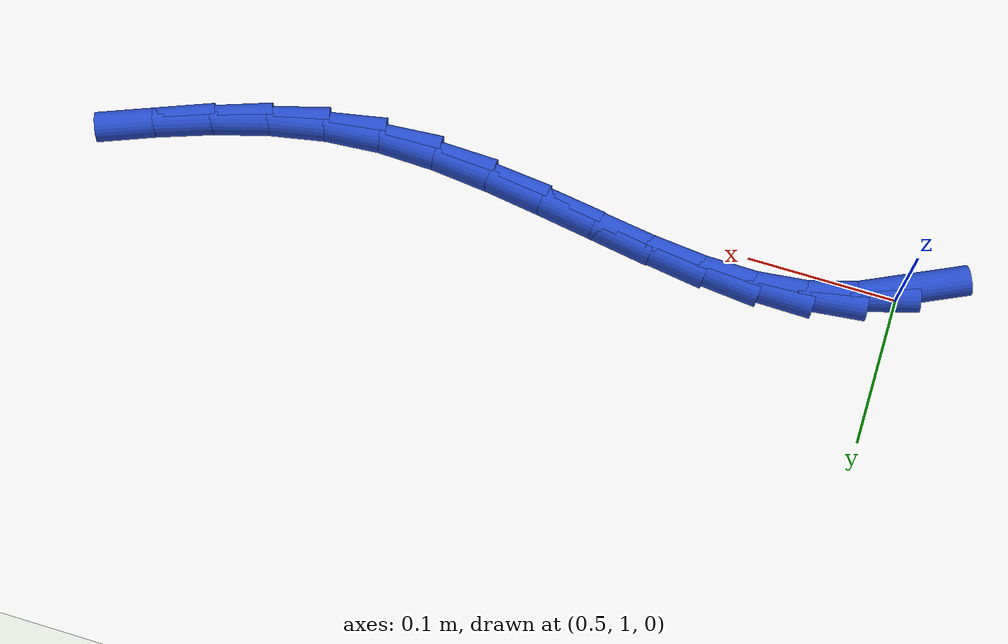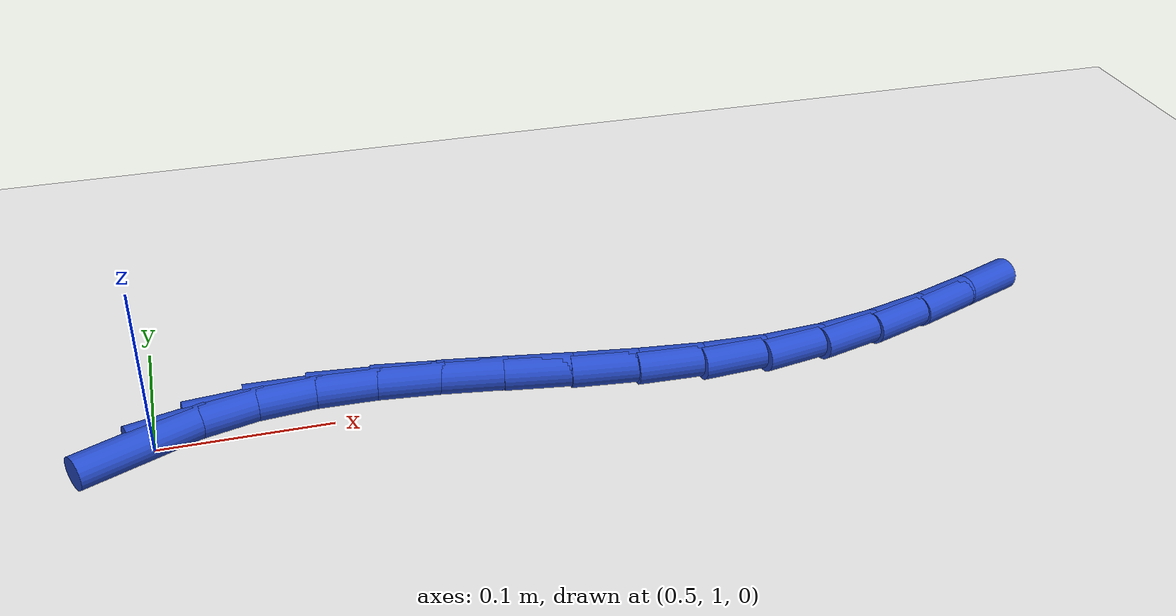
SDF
<sdf version="1.6">
 <world name="default">
  <model name="ground_plane">
   <static>1</static>
   <link name="link">
    <collision name="collision">
     <geometry><plane><normal>0 0 1</normal><size>100 100</size></plane></geometry>
     <surface><friction><ode><mu>100</mu><mu2>50</mu2></ode></friction></surface>
    </collision>
    <visual name="visual">
     <cast_shadows>0</cast_shadows>
     <geometry><plane><normal>0 0 1</normal><size>100 100</size></plane></geometry>
     <material>
      <script><uri>file://media/materials/scripts/gazebo.material</uri><name>Gazebo/WhiteGlow</name></script>
     </material>
    </visual>
   </link>
  </model>
  <model name="line">
   <link name="link_30">
    <pose>0.49432879406476116 0.9924204865949673 0.01 0 1.57 0.442410495497921</pose>
    <collision name="collision">
     <geometry><cylinder><radius>0.01</radius><length>0.08</length></cylinder></geometry>
    </collision>
    <visual name="visual">
     <material>
      <script><name>Gazebo/Blue</name><uri>file://media/materials/scripts/gazebo.material</uri></script>
     </material>
     <geometry><cylinder><radius>0.01</radius><length>0.08</length></cylinder></geometry>
    </visual>
   </link>
   <link name="link_31">
    <pose>0.5249382635212527 1.006921068396669 0.01 0 1.57 0.2758011422567</pose>
    <collision name="collision">
     <geometry><cylinder><radius>0.01</radius><length>0.08</length></cylinder></geometry>
    </collision>
    <visual name="visual">
     <material>
      <script><name>Gazebo/Blue</name><uri>file://media/materials/scripts/gazebo.material</uri></script>
     </material>
     <geometry><cylinder><radius>0.01</radius><length>0.08</length></cylinder></geometry>
    </visual>
   </link>
   <link name="link_32">
    <pose>0.5573112078425622 1.0160830561401628 0.01 0 1.57 0.11091420878421225</pose>
    <collision name="collision">
     <geometry><cylinder><radius>0.01</radius><length>0.08</length></cylinder></geometry>
    </collision>
    <visual name="visual">
     <material>
      <script><name>Gazebo/Blue</name><uri>file://media/materials/scripts/gazebo.material</uri></script>
     </material>
     <geometry><cylinder><radius>0.01</radius><length>0.08</length></cylinder></geometry>
    </visual>
   </link>
   <link name="link_33">
    <pose>0.5914532315949727 1.0198854969877424 0.01 0 1.57 -0.013574645325719763</pose>
    <collision name="collision">
     <geometry><cylinder><radius>0.01</radius><length>0.08</length></cylinder></geometry>
    </collision>
    <visual name="visual">
     <material>
      <script><name>Gazebo/Blue</name><uri>file://media/materials/scripts/gazebo.material</uri></script>
     </material>
     <geometry><cylinder><radius>0.01</radius><length>0.08</length></cylinder></geometry>
    </visual>
   </link>
   <link name="link_34">
    <pose>0.6270991123007051 1.0194015870759536 0.01 0 1.57 -0.09680402853373943</pose>
    <collision name="collision">
     <geometry><cylinder><radius>0.01</radius><length>0.08</length></cylinder></geometry>
    </collision>
    <visual name="visual">
     <material>
      <script><name>Gazebo/Blue</name><uri>file://media/materials/scripts/gazebo.material</uri></script>
     </material>
     <geometry><cylinder><radius>0.01</radius><length>0.08</length></cylinder></geometry>
    </visual>
   </link>
   <link name="link_35">
    <pose>0.6639543852991328 1.015822661793205 0.01 0 1.57 -0.1441500881530438</pose>
    <collision name="collision">
     <geometry><cylinder><radius>0.01</radius><length>0.08</length></cylinder></geometry>
    </collision>
    <visual name="visual">
     <material>
      <script><name>Gazebo/Blue</name><uri>file://media/materials/scripts/gazebo.material</uri></script>
     </material>
     <geometry><cylinder><radius>0.01</radius><length>0.08</length></cylinder></geometry>
    </visual>
   </link>
   <link name="link_36">
    <pose>0.7017245859296278 1.0103400565279046 0.01 0 1.57 -0.1599869326057495</pose>
    <collision name="collision">
     <geometry><cylinder><radius>0.01</radius><length>0.08</length></cylinder></geometry>
    </collision>
    <visual name="visual">
     <material>
      <script><name>Gazebo/Blue</name><uri>file://media/materials/scripts/gazebo.material</uri></script>
     </material>
     <geometry><cylinder><radius>0.01</radius><length>0.08</length></cylinder></geometry>
    </visual>
   </link>
   <link name="link_37">
    <pose>0.7401152495315626 1.0041451066684606 0.01 0 1.57 -0.1465768145054736</pose>
    <collision name="collision">
     <geometry><cylinder><radius>0.01</radius><length>0.08</length></cylinder></geometry>
    </collision>
    <visual name="visual">
     <material>
      <script><name>Gazebo/Blue</name><uri>file://media/materials/scripts/gazebo.material</uri></script>
     </material>
     <geometry><cylinder><radius>0.01</radius><length>0.08</length></cylinder></geometry>
    </visual>
   </link>
   <link name="link_38">
    <pose>0.7788319114443096 0.998429147603281 0.01 0 1.57 -0.10403136529894218</pose>
    <collision name="collision">
     <geometry><cylinder><radius>0.01</radius><length>0.08</length></cylinder></geometry>
    </collision>
    <visual name="visual">
     <material>
      <script><name>Gazebo/Blue</name><uri>file://media/materials/scripts/gazebo.material</uri></script>
     </material>
     <geometry><cylinder><radius>0.01</radius><length>0.08</length></cylinder></geometry>
    </visual>
   </link>
   <link name="link_39">
    <pose>0.817580107007242 0.9943835147207748 0.01 0 1.57 -0.030754576267320255</pose>
    <collision name="collision">
     <geometry><cylinder><radius>0.01</radius><length>0.08</length></cylinder></geometry>
    </collision>
    <visual name="visual">
     <material>
      <script><name>Gazebo/Blue</name><uri>file://media/materials/scripts/gazebo.material</uri></script>
     </material>
     <geometry><cylinder><radius>0.01</radius><length>0.08</length></cylinder></geometry>
    </visual>
   </link>
   <link name="link_40">
    <pose>0.8560653715597314 0.9931995434093488 0.01 0 1.57 0.0746664247674037</pose>
    <collision name="collision">
     <geometry><cylinder><radius>0.01</radius><length>0.08</length></cylinder></geometry>
    </collision>
    <visual name="visual">
     <material>
      <script><name>Gazebo/Blue</name><uri>file://media/materials/scripts/gazebo.material</uri></script>
     </material>
     <geometry><cylinder><radius>0.01</radius><length>0.08</length></cylinder></geometry>
    </visual>
   </link>
   <link name="link_41">
    <pose>0.8939987156026123 0.9960371658688199 0.01 0 1.57 0.1873155831965177</pose>
    <collision name="collision">
     <geometry><cylinder><radius>0.01</radius><length>0.08</length></cylinder></geometry>
    </collision>
    <visual name="visual">
     <material>
      <script><name>Gazebo/Blue</name><uri>file://media/materials/scripts/gazebo.material</uri></script>
     </material>
     <geometry><cylinder><radius>0.01</radius><length>0.08</length></cylinder></geometry>
    </visual>
   </link>
   <link name="link_42">
    <pose>0.9312580222862883 1.003099204025243 0.01 0 1.57 0.2759463623427365</pose>
    <collision name="collision">
     <geometry><cylinder><radius>0.01</radius><length>0.08</length></cylinder></geometry>
    </collision>
    <visual name="visual">
     <material>
      <script><name>Gazebo/Blue</name><uri>file://media/materials/scripts/gazebo.material</uri></script>
     </material>
     <geometry><cylinder><radius>0.01</radius><length>0.08</length></cylinder></geometry>
    </visual>
   </link>
   <link name="link_43">
    <pose>0.9679145678495793 1.0134792596162487 0.01 0 1.57 0.3386970586274794</pose>
    <collision name="collision">
     <geometry><cylinder><radius>0.01</radius><length>0.08</length></cylinder></geometry>
    </collision>
    <visual name="visual">
     <material>
      <script><name>Gazebo/Blue</name><uri>file://media/materials/scripts/gazebo.material</uri></script>
     </material>
     <geometry><cylinder><radius>0.01</radius><length>0.08</length></cylinder></geometry>
    </visual>
   </link>
   <link name="link_44">
    <pose>1.0040504439782332 1.026208901593413 0.01 0 1.57 0.3764397459259317</pose>
    <collision name="collision">
     <geometry><cylinder><radius>0.01</radius><length>0.08</length></cylinder></geometry>
    </collision>
    <visual name="visual">
     <material>
      <script><name>Gazebo/Blue</name><uri>file://media/materials/scripts/gazebo.material</uri></script>
     </material>
     <geometry><cylinder><radius>0.01</radius><length>0.08</length></cylinder></geometry>
    </visual>
   </link>
  </model>
 </world>
</sdf>
